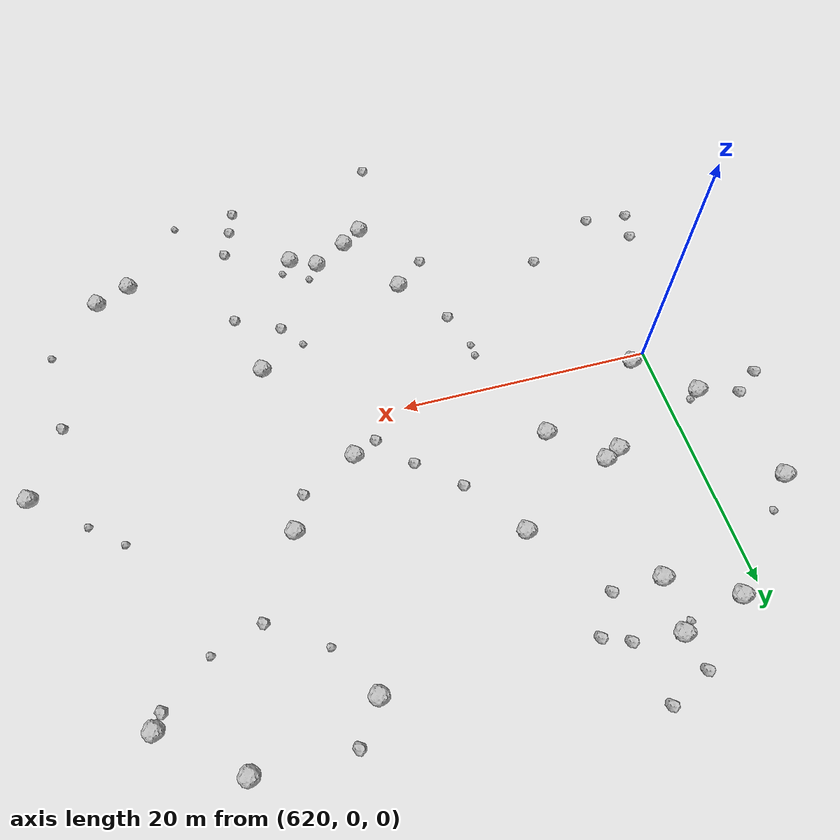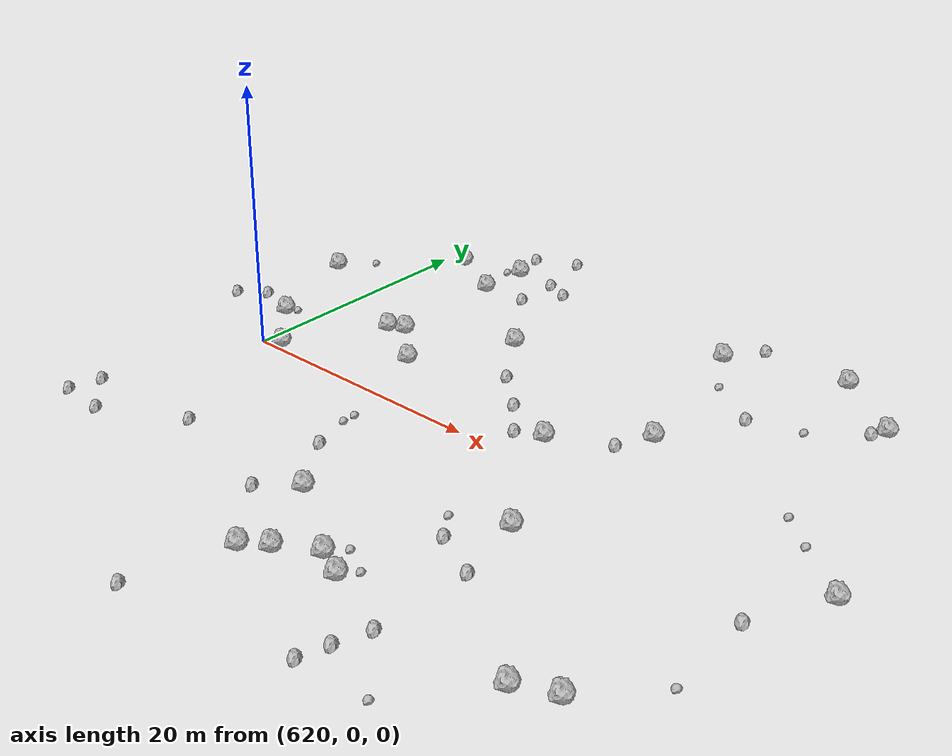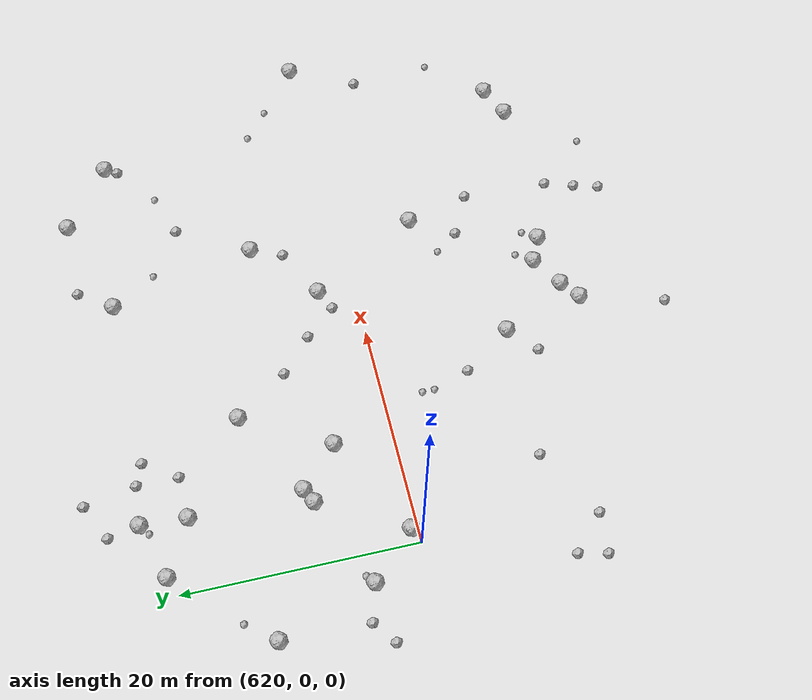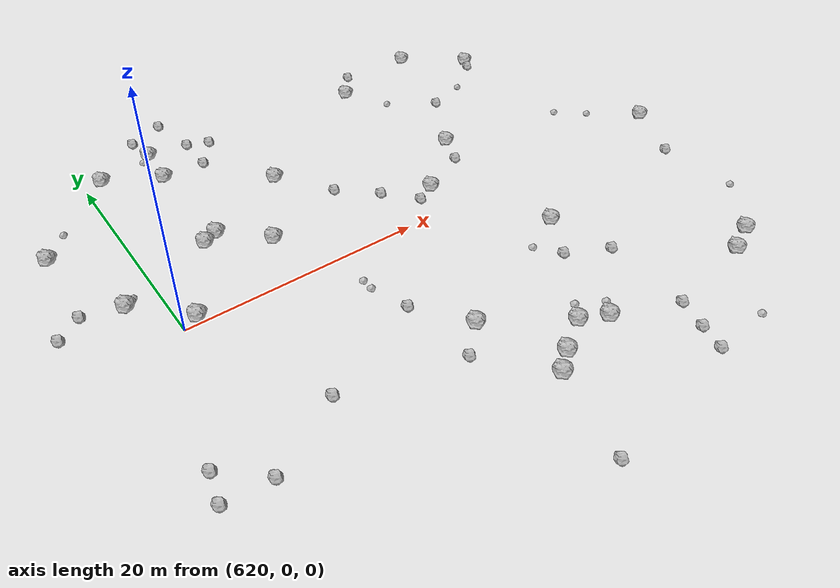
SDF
<sdf version="1.6">
 <world name="default">
  <include><uri>model://sun</uri></include>
  <model name="rock1_16_3">
   <include><uri>model://rock1</uri><pose>630.15906719872 5.074019789069517 0.5 0 0 0</pose></include>
  </model>
  <model name="rock1_16_4">
   <include><uri>model://rock1</uri><pose>647.2660620946219 20.72221655228543 0.5 0 0 0</pose></include>
  </model>
  <model name="rock1_16_5">
   <include><uri>model://rock1</uri><pose>644.7378790827632 3.1838908761975944 0.5 0 0 0</pose></include>
  </model>
  <model name="rock1_16_6">
   <include><uri>model://rock1</uri><pose>650.2320115405607 8.059340974656656 0.5 0 0 0</pose></include>
  </model>
  <model name="rock1_16_7">
   <include><uri>model://rock1</uri><pose>626.3731149696924 18.056843294424198 0.5 0 0 0</pose></include>
  </model>
  <model name="rock1_16_8">
   <include><uri>model://rock1</uri><pose>643.5386233855661 -15.855123165697346 0.5 0 0 0</pose></include>
  </model>
  <model name="rock1_16_9">
   <include><uri>model://rock1</uri><pose>621.6497120656975 20.647214697610906 0.5 0 0 0</pose></include>
  </model>
  <model name="rock1_16_10">
   <include><uri>model://rock1</uri><pose>656.1513935059754 23.31939131718947 0.5 0 0 0</pose></include>
  </model>
  <model name="rock1_16_11">
   <include><uri>model://rock1</uri><pose>645.7262196099375 -16.877747745979054 0.5 0 0 0</pose></include>
  </model>
  <model name="rock1_16_12">
   <include><uri>model://rock1</uri><pose>637.3448904061353 -11.779097733716746 0.5 0 0 0</pose></include>
  </model>
  <model name="rock1_16_13">
   <include><uri>model://rock1</uri><pose>639.1405538142056 -18.767342824948674 0.5 0 0 0</pose></include>
  </model>
  <model name="rock1_16_14">
   <include><uri>model://rock1</uri><pose>621.3495049641691 0.6451540978185264 0.5 0 0 0</pose></include>
  </model>
  <model name="rock1_16_15">
   <include><uri>model://rock1</uri><pose>634.3136955829217 12.322855489264093 0.5 0 0 0</pose></include>
  </model>
  <model name="rock1_16_16">
   <include><uri>model://rock1</uri><pose>650.0245920814425 -6.264960883474931 0.5 0 0 0</pose></include>
  </model>
  <model name="rock1_16_17">
   <include><uri>model://rock1</uri><pose>626.5997333294057 22.028141652988396 0.5 0 0 0</pose></include>
  </model>
  <model name="rock1_16_18">
   <include><uri>model://rock1</uri><pose>614.4323171108746 13.045229871695454 0.5 0 0 0</pose></include>
  </model>
  <model name="rock1_16_19">
   <include><uri>model://rock1</uri><pose>661.5310989470847 19.12877481361378 0.5 0 0 0</pose></include>
  </model>
  <model name="rock1_16_20">
   <include><uri>model://rock1</uri><pose>626.6766062975073 8.398123979534859 0.5 0 0 0</pose></include>
  </model>
  <model name="rock1_16_21">
   <include><uri>model://rock1</uri><pose>668.5100460136994 0.5924828899033123 0.5 0 0 0</pose></include>
  </model>
  <model name="rock1_16_22">
   <include><uri>model://rock1</uri><pose>617.4603193497308 4.5437772045550275 0.5 0 0 0</pose></include>
  </model>
  <model name="rock1_16_23">
   <include><uri>model://rock1</uri><pose>659.4969741695052 -17.590780438632805 0.5 0 0 0</pose></include>
  </model>
  <model name="rock1_16_24">
   <include><uri>model://rock1</uri><pose>662.2093760051625 -16.407917988876946 0.5 0 0 0</pose></include>
  </model>
  <model name="rock1_16_25">
   <include><uri>model://rock1</uri><pose>640.7893046005914 -17.530494695721416 0.5 0 0 0</pose></include>
  </model>
  <model name="rock1_16_26">
   <include><uri>model://rock1</uri><pose>625.420702673334 7.79809417540406 0.5 0 0 0</pose></include>
  </model>
  <model name="rock2_16_0">
   <include><uri>model://rock2</uri><pose>616.1766753379417 -11.900293081916537 0.3 0 0 0</pose></include>
  </model>
  <model name="rock2_16_1">
   <include><uri>model://rock2</uri><pose>649.2168270805636 23.497831077696723 0.3 0 0 0</pose></include>
  </model>
  <model name="rock2_16_2">
   <include><uri>model://rock2</uri><pose>614.2299727493822 5.5193449645091945 0.3 0 0 0</pose></include>
  </model>
  <model name="rock2_16_3">
   <include><uri>model://rock2</uri><pose>634.8782863804331 -13.932813928295658 0.3 0 0 0</pose></include>
  </model>
  <model name="rock2_16_4">
   <include><uri>model://rock2</uri><pose>625.3325236077617 -11.338781923617319 0.3 0 0 0</pose></include>
  </model>
  <model name="rock2_16_5">
   <include><uri>model://rock2</uri><pose>612.220213632789 4.062669506029103 0.3 0 0 0</pose></include>
  </model>
  <model name="rock2_16_6">
   <include><uri>model://rock2</uri><pose>647.8144936524491 -9.949486911405145 0.3 0 0 0</pose></include>
  </model>
  <model name="rock2_16_7">
   <include><uri>model://rock2</uri><pose>640.552893703669 4.962285447611862 0.3 0 0 0</pose></include>
  </model>
  <model name="rock2_16_8">
   <include><uri>model://rock2</uri><pose>637.0758433105602 -25.910808707269453 0.3 0 0 0</pose></include>
  </model>
  <model name="rock2_16_9">
   <include><uri>model://rock2</uri><pose>665.753305821424 -4.916099132509565 0.3 0 0 0</pose></include>
  </model>
  <model name="rock2_16_10">
   <include><uri>model://rock2</uri><pose>651.0753386686426 -19.06874217624886 0.3 0 0 0</pose></include>
  </model>
  <model name="rock2_16_11">
   <include><uri>model://rock2</uri><pose>634.2688176031224 -7.528945261459448 0.3 0 0 0</pose></include>
  </model>
  <model name="rock2_16_12">
   <include><uri>model://rock2</uri><pose>651.36065473828 -11.732895843818799 0.3 0 0 0</pose></include>
  </model>
  <model name="rock2_16_13">
   <include><uri>model://rock2</uri><pose>649.0776488846626 5.356912152369453 0.3 0 0 0</pose></include>
  </model>
  <model name="rock2_16_14">
   <include><uri>model://rock2</uri><pose>626.065407277622 24.712704231684356 0.3 0 0 0</pose></include>
  </model>
  <model name="rock2_16_15">
   <include><uri>model://rock2</uri><pose>630.1027813838928 18.117043598370337 0.3 0 0 0</pose></include>
  </model>
  <model name="rock2_16_16">
   <include><uri>model://rock2</uri><pose>629.2487012539884 26.185642255015132 0.3 0 0 0</pose></include>
  </model>
  <model name="rock2_16_17">
   <include><uri>model://rock2</uri><pose>637.5282560495359 7.703923036697695 0.3 0 0 0</pose></include>
  </model>
  <model name="rock2_16_18">
   <include><uri>model://rock2</uri><pose>632.0237942104598 20.8936698055724 0.3 0 0 0</pose></include>
  </model>
  <model name="rock2_16_19">
   <include><uri>model://rock2</uri><pose>660.9262363006327 18.078525041152965 0.3 0 0 0</pose></include>
  </model>
  <model name="rock2_16_20">
   <include><uri>model://rock2</uri><pose>649.6676801130869 -23.64997250024765 0.3 0 0 0</pose></include>
  </model>
  <model name="rock2_16_21">
   <include><uri>model://rock2</uri><pose>653.6055325329916 14.04908350817901 0.3 0 0 0</pose></include>
  </model>
  <model name="rock2_16_22">
   <include><uri>model://rock2</uri><pose>615.6065041583312 -14.316521947851728 0.3 0 0 0</pose></include>
  </model>
  <model name="rock2_16_23">
   <include><uri>model://rock2</uri><pose>619.2131541961969 -14.634788379786501 0.3 0 0 0</pose></include>
  </model>
  <model name="rock2_16_24">
   <include><uri>model://rock2</uri><pose>630.1294855892144 21.68060955927497 0.3 0 0 0</pose></include>
  </model>
  <model name="rock2_16_25">
   <include><uri>model://rock2</uri><pose>642.8712556879923 2.310208564446242 0.3 0 0 0</pose></include>
  </model>
  <model name="rock2_16_26">
   <include><uri>model://rock2</uri><pose>650.2786740140506 -21.541773832286182 0.3 0 0 0</pose></include>
  </model>
  <model name="rock3_16_0">
   <include><uri>model://rock3</uri><pose>616.4240981546895 15.401074902384075 0.2 0 0 0</pose></include>
  </model>
  <model name="rock3_16_1">
   <include><uri>model://rock3</uri><pose>646.5613804472578 -15.747039949029443 0.2 0 0 0</pose></include>
  </model>
  <model name="rock3_16_2">
   <include><uri>model://rock3</uri><pose>646.3413461969008 -8.01901377665288 0.2 0 0 0</pose></include>
  </model>
  <model name="rock3_16_3">
   <include><uri>model://rock3</uri><pose>662.0073572274123 5.84595568358003 0.2 0 0 0</pose></include>
  </model>
  <model name="rock3_16_4">
   <include><uri>model://rock3</uri><pose>664.4463814062032 3.804717556894097 0.2 0 0 0</pose></include>
  </model>
  <model name="rock3_16_5">
   <include><uri>model://rock3</uri><pose>666.1871544362587 -11.864737922914067 0.2 0 0 0</pose></include>
  </model>
  <model name="rock3_16_6">
   <include><uri>model://rock3</uri><pose>657.3575240602452 15.266057007876668 0.2 0 0 0</pose></include>
  </model>
  <model name="rock3_16_7">
   <include><uri>model://rock3</uri><pose>618.1807441789831 5.071525361011581 0.2 0 0 0</pose></include>
  </model>
  <model name="rock3_16_8">
   <include><uri>model://rock3</uri><pose>633.184985224466 -3.338265427164032 0.2 0 0 0</pose></include>
  </model>
  <model name="rock3_16_9">
   <include><uri>model://rock3</uri><pose>649.5340133061901 16.767258474932675 0.2 0 0 0</pose></include>
  </model>
  <model name="rock3_16_10">
   <include><uri>model://rock3</uri><pose>654.8703185002855 -23.299363530727007 0.2 0 0 0</pose></include>
  </model>
  <model name="rock3_16_11">
   <include><uri>model://rock3</uri><pose>644.4631083804147 -14.580145084730475 0.2 0 0 0</pose></include>
  </model>
  <model name="rock3_16_12">
   <include><uri>model://rock3</uri><pose>633.2011416561975 -4.384180439603547 0.2 0 0 0</pose></include>
  </model>
  <model name="rock3_16_13">
   <include><uri>model://rock3</uri><pose>625.7007487553623 21.34526146614781 0.2 0 0 0</pose></include>
  </model>
 </world>
</sdf>
